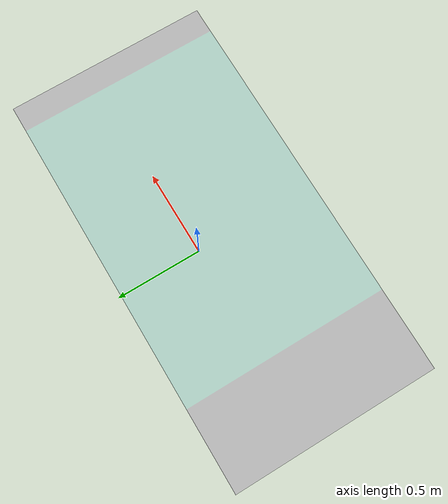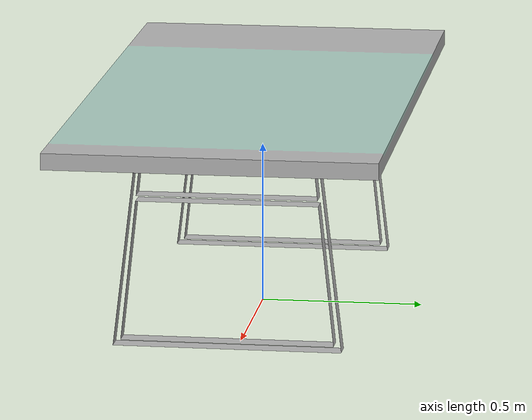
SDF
<?xml version="1.0" ?>
<sdf version="1.5">
  <model name="table2">
    <static>1</static>
    <link name="link">
      <inertial>
	<pose>0.0 0.0 0.0 0.0 0.0 0.0</pose>
        <mass>20.0</mass>
        <inertia> <!-- interias are tricky to compute -->
          <!-- http://answers.gazebosim.org/question/4372/the-inertia-matrix-explained/ -->
          <ixx>0.041734209</ixx>       <!-- for a box: ixx = 0.083 * mass * (y*y + z*z) -->
          <ixy>0.0</ixy>         <!-- for a box: ixy = 0 -->
          <ixz>0.0</ixz>         <!-- for a box: ixz = 0 -->
          <iyy>0.061814814</iyy>       <!-- for a box: iyy = 0.083 * mass * (x*x + z*z) -->
          <iyz>0.0</iyz>         <!-- for a box: iyz = 0 -->
          <izz>0.084874024</izz>       <!-- for a box: izz = 0.083 * mass * (x*x + y*y) -->
        </inertia>
      </inertial>
      <collision name="collision">
        <geometry>
          <mesh>
            <uri>model://table2/meshes/table2.dae</uri>
          </mesh>
        </geometry>
      </collision>
      <visual name="visual">
        <geometry>
          <mesh>
            <uri>model://table2/meshes/table2.dae</uri>
          </mesh>
        </geometry>
      </visual>
    </link>
  </model>
</sdf>
